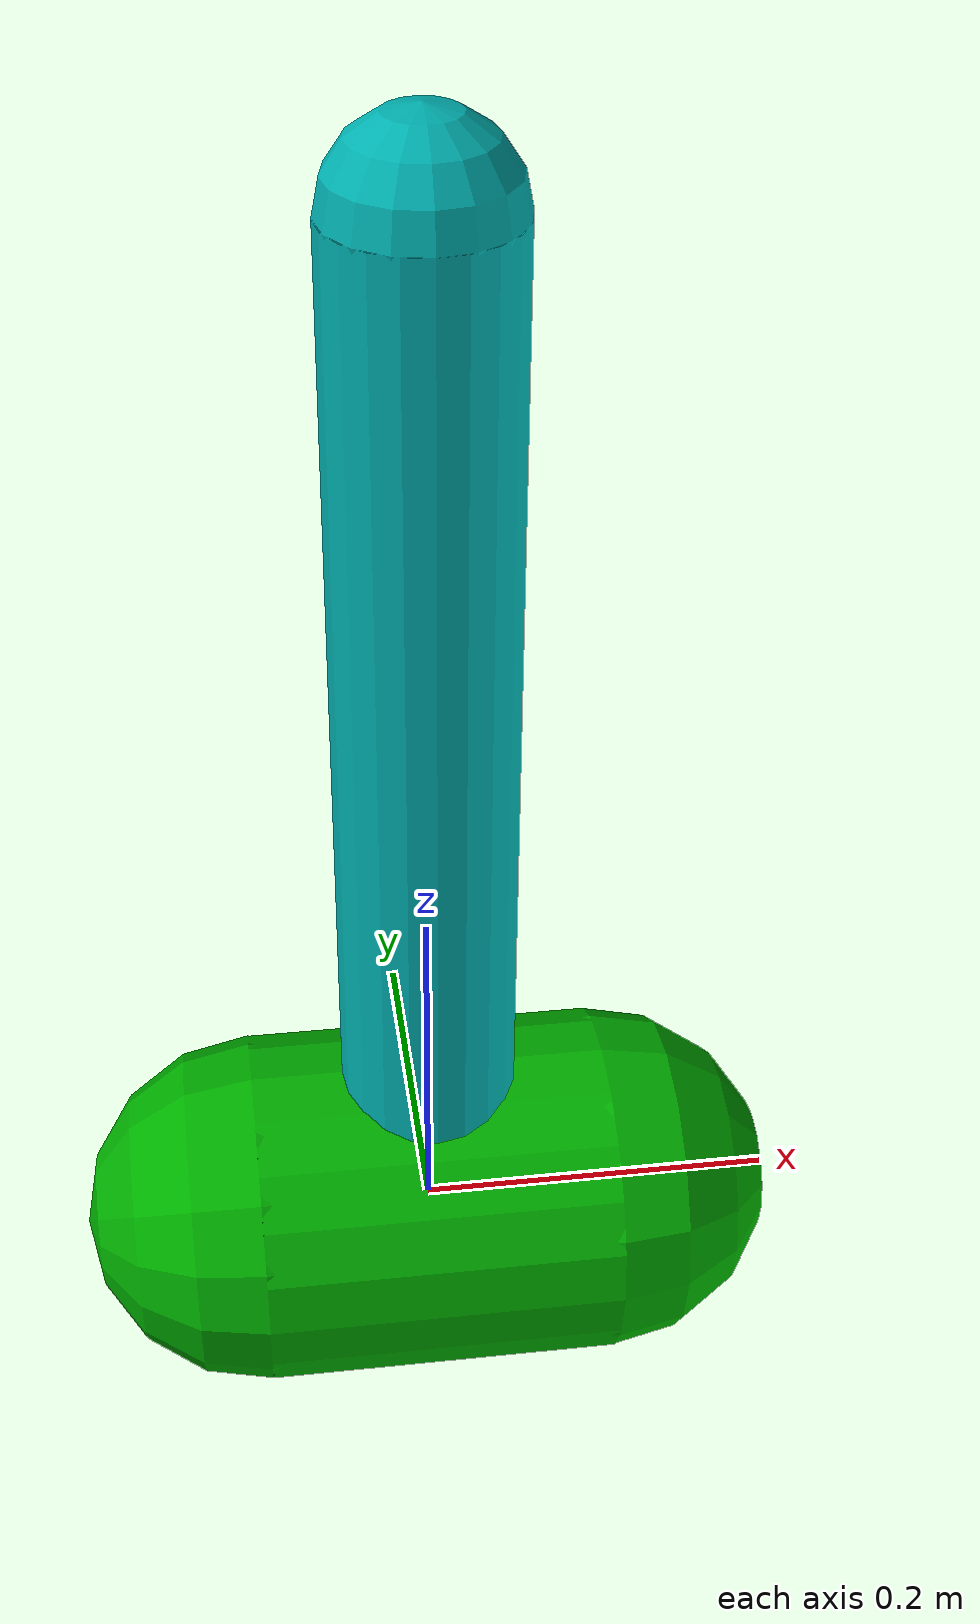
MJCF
<mujoco model="inverted pendulum">
    <visual>
        <headlight diffuse="0.6 0.6 0.6" ambient="0.3 0.3 0.3" specular="0 0 0"/>
        <rgba haze="0.15 0.25 0.35 1"/>
        <global azimuth="160" elevation="-20"/>
    </visual>

    <asset>
        <texture type="skybox" builtin="gradient" rgb1="0.3 0.5 0.7" rgb2="0 0 0" width="512" height="3072"/>
    </asset>

    <compiler inertiafromgeom="true"/>

    <default>
        <joint armature="0" damping="1" limited="true"/>
        <geom contype="0" friction="1 0.1 0.1" rgba="0.0 0.7 0 1"/>
        <tendon/>
        <motor ctrlrange="-3 3"/>
    </default>

    <option gravity="0 0 -9.81" integrator="RK4" timestep="0.02"/>

    <size nstack="3000"/>

    <worldbody>
        <light pos="0 0 3.5" dir="0 0 -1" directional="true"/>
        <!--geom name="ground" type="plane" pos="0 0 0" /-->
        <geom name="rail" pos="0 0 0" quat="0.707 0 0.707 0" rgba="0.3 0.3 0.7 1" size="0.02 1" type="capsule" group="3"/>
<!-- X-axis: Red -->
        <geom type="capsule" fromto="0 0 0 1 0 0" size="0.01" rgba="1 0 0 1" group="4"/>

        <!-- Y-axis: Green -->
        <geom type="capsule" fromto="0 0 0 0 1 0" size="0.01" rgba="0 1 0 1" group="4"/>

        <!-- Z-axis: Blue -->
        <geom type="capsule" fromto="0 0 0 0 0 1" size="0.01" rgba="0 0 1 1" group="4"/>

        <body name="cart" pos="0 0 0">
            <joint
                axis="1 0 0" limited="true" name="slider" pos="0 0 0" range="-1.0 1.0" type="slide"
            />
            <geom
                name="cart" pos="0 0 0" quat="0.707 0 0.707 0" size="0.1 0.1" type="capsule"
            />
            <body name="pole" pos="0 0 0">
                <joint
                    axis="0 1 0" limited="true" name="hinge" pos="0 0 0" range="-100000 100000" type="hinge"
                />
                <geom
                    fromto="0 0 0 0.001 0 0.6" name="cpole" rgba="0 0.7 0.7 1" size="0.049 0.3" type="capsule"
                />
            </body>
        </body>
    </worldbody>
    <actuator>
        <motor
            ctrllimited="true" ctrlrange="-3 3" gear="100" joint="slider" name="slide"
        />
    </actuator>
</mujoco>
